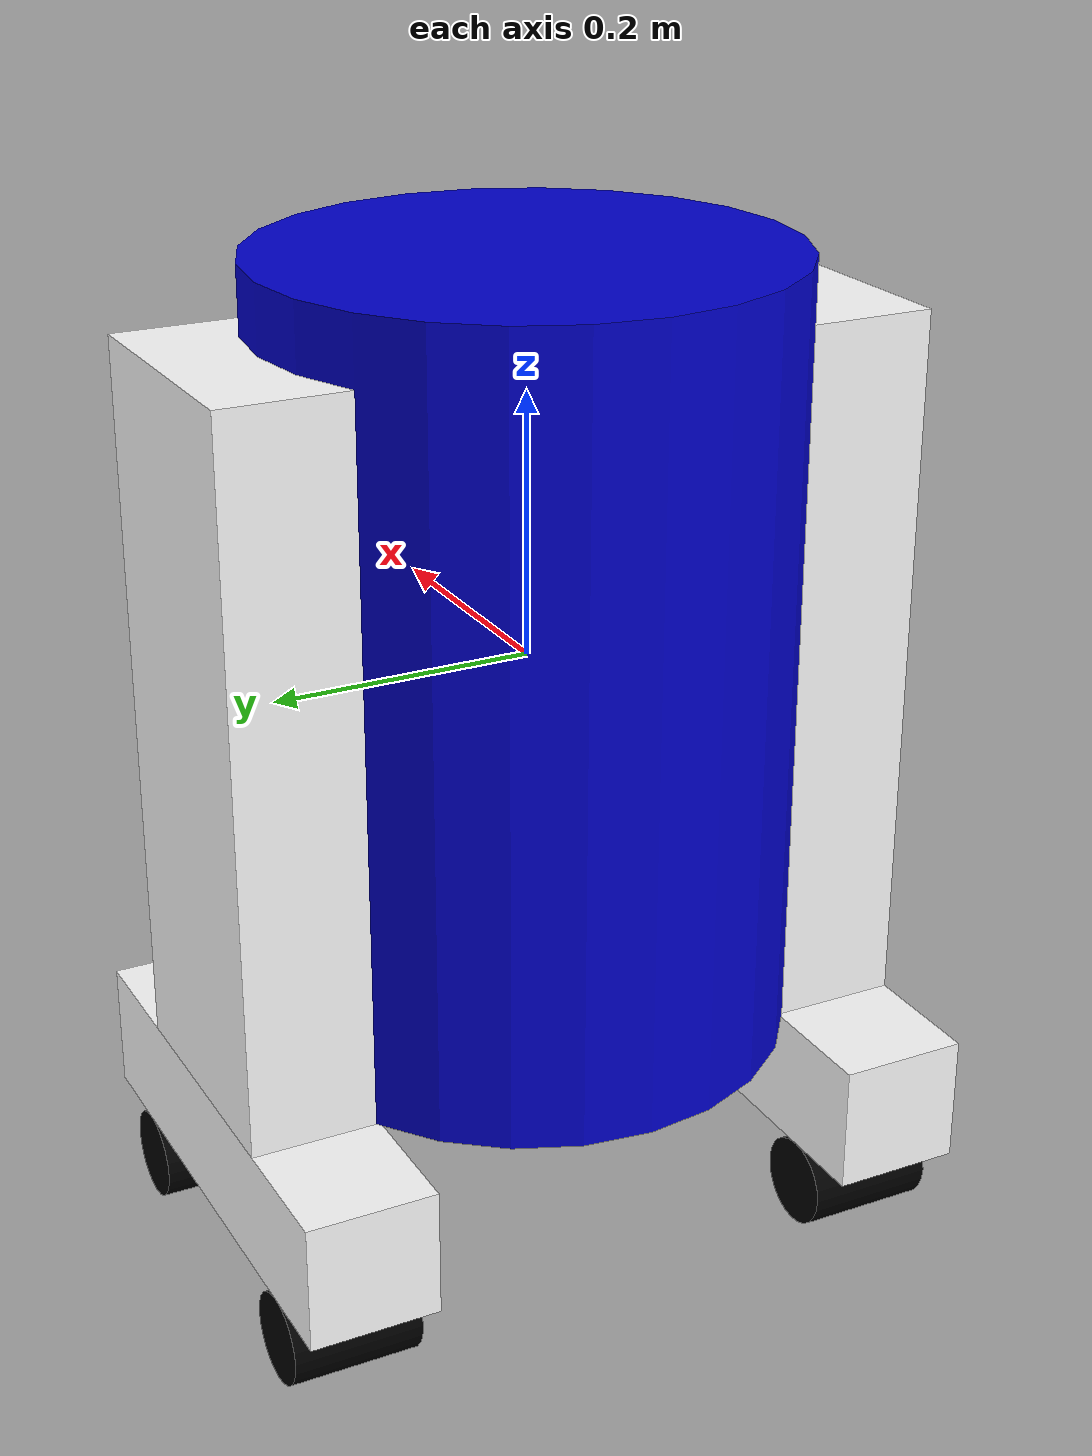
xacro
<?xml version="1.0"?>
<robot xmlns:xacro="http://www.ros.org/wiki/xacro" name="physics">

<material name="blue">
    <color rgba="0 0 0.8 1"/>
  </material>
  <material name="black">
    <color rgba="0 0 0 1"/>
  </material>
  <material name="white">
    <color rgba="1 1 1 1"/>
  </material>
  <link name="base_link">
    <visual>
      <geometry>
        <cylinder length="0.6" radius="0.2"/>
      </geometry>
      <material name="blue"/>
    </visual>
    <collision>
      <geometry>
        <cylinder length="0.6" radius="0.2"/>
      </geometry>
    </collision>
    <inertial>
      <mass value="10"/>
      <inertia ixx="1e-3" ixy="0.0" ixz="0.0" iyy="1e-3" iyz="0.0" izz="1e-3"/>
    </inertial>
  </link>
  <link name="right_leg">
    <visual>
      <geometry>
        <box size="0.6 0.1 0.2"/>
      </geometry>
      <origin rpy="0 1.57075 0" xyz="0 0 -0.3"/>
      <material name="white"/>
    </visual>
    <collision>
      <geometry>
        <box size="0.6 0.1 0.2"/>
      </geometry>
      <origin rpy="0 1.57075 0" xyz="0 0 -0.3"/>
    </collision>
    <inertial>
      <mass value="10"/>
      <inertia ixx="1e-3" ixy="0.0" ixz="0.0" iyy="1e-3" iyz="0.0" izz="1e-3"/>
    </inertial>
  </link>
  <joint name="base_to_right_leg" type="fixed">
    <parent link="base_link"/>
    <child link="right_leg"/>
    <origin xyz="0 -0.22 0.25"/>
  </joint>

  <link name="right_base">
    <visual>
      <geometry>
        <box size="0.4 0.1 0.1"/>
      </geometry>
      <material name="white"/>
    </visual>
    <collision>
      <geometry>
        <box size="0.4 0.1 0.1"/>
      </geometry>
    </collision>
    <inertial>
      <mass value="10"/>
      <inertia ixx="1e-3" ixy="0.0" ixz="0.0" iyy="1e-3" iyz="0.0" izz="1e-3"/>
    </inertial>
  </link>

  <joint name="right_base_joint" type="fixed">
    <parent link="right_leg"/>
    <child link="right_base"/>
    <origin xyz="0 0 -0.6"/>
  </joint>

  <link name="right_front_wheel">
    <visual>
      <origin rpy="1.57075 0 0" xyz="0 0 0"/>
      <geometry>
        <cylinder length="0.1" radius="0.035"/>
      </geometry>
      <material name="black"/>
    </visual>
    <collision>
      <origin rpy="1.57075 0 0" xyz="0 0 0"/>
      <geometry>
        <cylinder length="0.1" radius="0.035"/>
      </geometry>
    </collision>
    <inertial>
      <mass value="1"/>
      <inertia ixx="1e-3" ixy="0.0" ixz="0.0" iyy="1e-3" iyz="0.0" izz="1e-3"/>
    </inertial>
  </link>

  <joint name="right_front_wheel_joint" type="continuous">
    <axis rpy="0 0 0" xyz="0 1 0"/>
    <parent link="right_base"/>
    <child link="right_front_wheel"/>
    <origin rpy="0 0 0" xyz="0.133333333333 0 -0.085"/>
  </joint>

  <link name="right_back_wheel">
    <visual>
      <origin rpy="1.57075 0 0" xyz="0 0 0"/>
      <geometry>
        <cylinder length="0.1" radius="0.035"/>
      </geometry>
      <material name="black"/>
    </visual>
    <collision>
      <origin rpy="1.57075 0 0" xyz="0 0 0"/>
      <geometry>
        <cylinder length="0.1" radius="0.035"/>
      </geometry>
    </collision>
    <inertial>
      <mass value="1"/>
      <inertia ixx="1e-3" ixy="0.0" ixz="0.0" iyy="1e-3" iyz="0.0" izz="1e-3"/>
    </inertial>
  </link>

  <joint name="right_back_wheel_joint" type="continuous">
    <axis rpy="0 0 0" xyz="0 1 0"/>
    <parent link="right_base"/>
    <child link="right_back_wheel"/>
    <origin rpy="0 0 0" xyz="-0.133333333333 0 -0.085"/>
  </joint>

  <link name="left_leg">
    <visual>
      <geometry>
        <box size="0.6 0.1 0.2"/>
      </geometry>
      <origin rpy="0 1.57075 0" xyz="0 0 -0.3"/>
      <material name="white"/>
    </visual>
    <collision>
      <geometry>
        <box size="0.6 0.1 0.2"/>
      </geometry>
      <origin rpy="0 1.57075 0" xyz="0 0 -0.3"/>
    </collision>
    <inertial>
      <mass value="10"/>
      <inertia ixx="1e-3" ixy="0.0" ixz="0.0" iyy="1e-3" iyz="0.0" izz="1e-3"/>
    </inertial>
  </link>

  <joint name="base_to_left_leg" type="fixed">
    <parent link="base_link"/>
    <child link="left_leg"/>
    <origin xyz="0 0.22 0.25"/>
  </joint>

  <link name="left_base">
    <visual>
      <geometry>
        <box size="0.4 0.1 0.1"/>
      </geometry>
      <material name="white"/>
    </visual>
    <collision>
      <geometry>
        <box size="0.4 0.1 0.1"/>
      </geometry>
    </collision>
    <inertial>
      <mass value="10"/>
      <inertia ixx="1e-3" ixy="0.0" ixz="0.0" iyy="1e-3" iyz="0.0" izz="1e-3"/>
    </inertial>
  </link>

  <joint name="left_base_joint" type="fixed">
    <parent link="left_leg"/>
    <child link="left_base"/>
    <origin xyz="0 0 -0.6"/>
  </joint>

  <link name="left_front_wheel">
    <visual>
      <origin rpy="1.57075 0 0" xyz="0 0 0"/>
      <geometry>
        <cylinder length="0.1" radius="0.035"/>
      </geometry>
      <material name="black"/>
    </visual>
    <collision>
      <origin rpy="1.57075 0 0" xyz="0 0 0"/>
      <geometry>
        <cylinder length="0.1" radius="0.035"/>
      </geometry>
    </collision>
    <inertial>
      <mass value="1"/>
      <inertia ixx="1e-3" ixy="0.0" ixz="0.0" iyy="1e-3" iyz="0.0" izz="1e-3"/>
    </inertial>
  </link>

  <joint name="left_front_wheel_joint" type="continuous">
    <axis rpy="0 0 0" xyz="0 1 0"/>
    <parent link="left_base"/>
    <child link="left_front_wheel"/>
    <origin rpy="0 0 0" xyz="0.133333333333 0 -0.085"/>
  </joint>

  <link name="left_back_wheel">
    <visual>
      <origin rpy="1.57075 0 0" xyz="0 0 0"/>
      <geometry>
        <cylinder length="0.1" radius="0.035"/>
      </geometry>
      <material name="black"/>
    </visual>
    <collision>
      <origin rpy="1.57075 0 0" xyz="0 0 0"/>
      <geometry>
        <cylinder length="0.1" radius="0.035"/>
      </geometry>
    </collision>
    <inertial>
      <mass value="1"/>
      <inertia ixx="1e-3" ixy="0.0" ixz="0.0" iyy="1e-3" iyz="0.0" izz="1e-3"/>
    </inertial>
  </link>

  <joint name="left_back_wheel_joint" type="continuous">
    <axis rpy="0 0 0" xyz="0 1 0"/>
    <parent link="left_base"/>
    <child link="left_back_wheel"/>
    <origin rpy="0 0 0" xyz="-0.133333333333 0 -0.085"/>
  </joint>

</robot>
